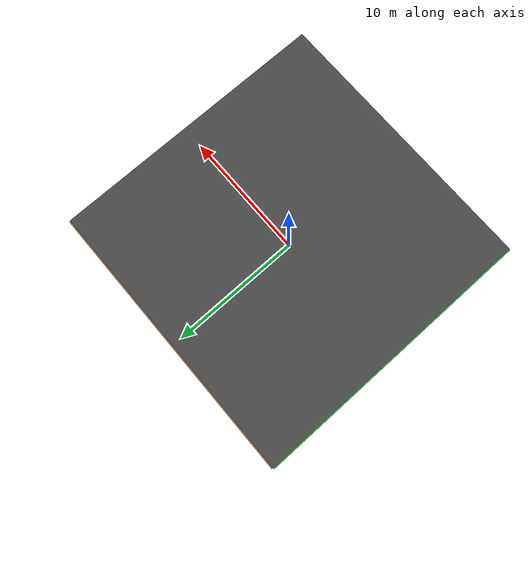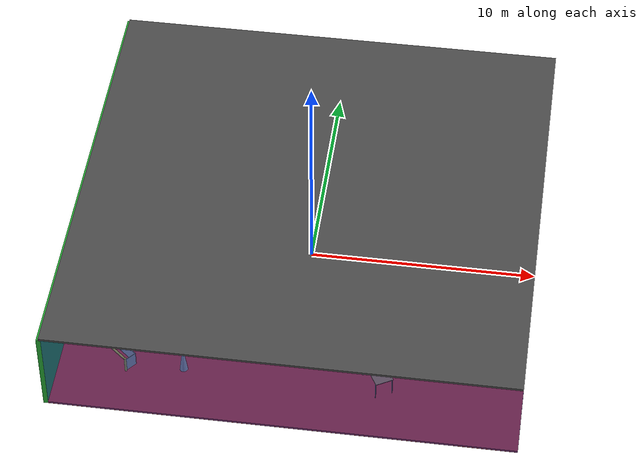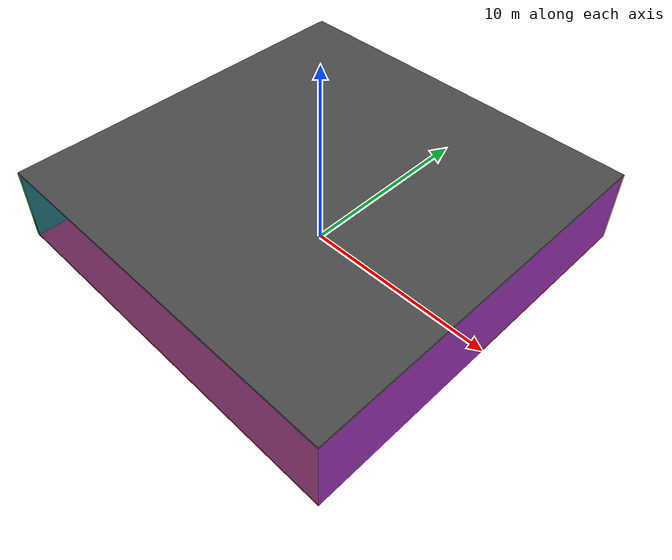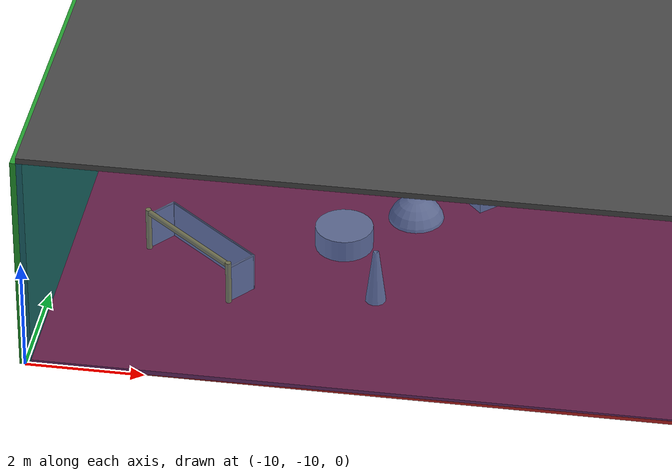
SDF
<sdf version="1.4">
 <world name="default">
  <physics type="ode">
   <max_step_size>0.001</max_step_size>
   <real_time_factor>1</real_time_factor>
   <real_time_update_rate>1000</real_time_update_rate>
   <gravity>0 0 -9.8</gravity>
  </physics>
  <scene><ambient>0.4 0.4 0.4 1</ambient><background>0.7 0.7 0.7 1</background><shadows>1</shadows></scene>
  <model name="Surrounding">
   <static>1</static>
   <link name="Ceiling">
    <collision name="Ceiling_Collision"><geometry><box><size>20 20 0.1</size></box></geometry></collision>
    <visual name="Ceiling_Visual">
     <geometry><box><size>20 20 0.1</size></box></geometry>
     <material>
      <script><uri>file://media/materials/scripts/gazebo.material</uri><name>Gazebo/Road</name></script>
     </material>
    </visual>
    <pose>0 0 4.05 0 0 0</pose>
   </link>
   <link name="Wall_South">
    <collision name="Wall_South_Collision">
     <geometry><box><size>20 0 4</size></box></geometry>
     <pose>0 0 2 0 -0 0</pose>
    </collision>
    <visual name="Wall_South_Visual">
     <pose>0 0 2 0 -0 0</pose>
     <geometry><box><size>20 0 4</size></box></geometry>
     <material>
      <script><uri>file://media/materials/scripts/gazebo.material</uri><name>Gazebo/BlueTransparent</name></script>
     </material>
    </visual>
    <velocity_decay><linear>0</linear><angular>0</angular></velocity_decay>
    <pose>0 -10 0 0 -0 0</pose>
   </link>
   <link name="Wall_East">
    <collision name="Wall_21_Collision">
     <geometry><box><size>20 0 4</size></box></geometry>
     <pose>0 0 2 0 -0 0</pose>
    </collision>
    <visual name="Wall_21_Visual">
     <pose>0 0 2 0 -0 0</pose>
     <geometry><box><size>20 0 4</size></box></geometry>
     <material>
      <script><uri>file://media/materials/scripts/gazebo.material</uri><name>Gazebo/Purple</name></script>
     </material>
    </visual>
    <velocity_decay><linear>0</linear><angular>0</angular></velocity_decay>
    <pose>10 0 0 0 -0 1.5708</pose>
   </link>
   <link name="Wall_North">
    <collision name="Wall_22_Collision">
     <geometry><box><size>20 0.2 4</size></box></geometry>
     <pose>0 0 2 0 -0 0</pose>
    </collision>
    <visual name="Wall_22_Visual">
     <pose>0 0 2 0 -0 0</pose>
     <geometry><box><size>20 0.2 4</size></box></geometry>
     <material>
      <script><uri>file://media/materials/scripts/gazebo.material</uri><name>Gazebo/WoodFloor</name></script>
     </material>
    </visual>
    <velocity_decay><linear>0</linear><angular>0</angular></velocity_decay>
    <pose>0 10 0 0 -0 0</pose>
   </link>
   <link name="Wall_West">
    <collision name="Wall_23_Collision">
     <geometry><box><size>20 0.2 4</size></box></geometry>
     <pose>0 0 2 0 -0 0</pose>
    </collision>
    <visual name="Wall_23_Visual">
     <pose>0 0 2 0 -0 0</pose>
     <geometry><box><size>20 0.2 4</size></box></geometry>
     <material>
      <script><uri>file://media/materials/scripts/gazebo.material</uri><name>Gazebo/Green</name></script>
     </material>
    </visual>
    <velocity_decay><linear>0</linear><angular>0</angular></velocity_decay>
    <pose>-10 0 0 0 0 -1.5708</pose>
   </link>
   <link name="Ground_link">
    <collision name="collision">
     <pose>0 0 .05 0 -0 0</pose>
     <geometry><box><size>20 20 0.1</size></box></geometry>
    </collision>
    <visual name="visual">
     <pose>0 0 .05 0 -0 0</pose>
     <geometry><box><size>20 20 0.1</size></box></geometry>
     <material>
      <script><uri>file://media/materials/scripts/gazebo.material</uri><name>Gazebo/RedBright</name></script>
     </material>
    </visual>
   </link>
   <static>1</static>
  </model>
  <spherical_coordinates>
   <surface_model>EARTH_WGS84</surface_model>
   <latitude_deg>0</latitude_deg>
   <longitude_deg>0</longitude_deg>
   <elevation>0</elevation>
   <heading_deg>0</heading_deg>
  </spherical_coordinates>
  <light name="lightball_0" type="diffuse">
   <diffuse>0.8 0.8 0.8 1</diffuse>
   <specular>0.2 0.2 0.2 1</specular>
   <attenuation>
    <range>100</range>
    <constant>0.7</constant>
    <linear>0.01</linear>
    <quadratic>0.001</quadratic>
   </attenuation>
   <direction>-0.5 0.1 -0.9</direction>
   <pose>-8.95540850863 7.91236832704 1.64403742394 0 0 0</pose>
  </light>
  <light name="lightball_1" type="diffuse">
   <diffuse>0.8 0.8 0.8 1</diffuse>
   <specular>0.2 0.2 0.2 1</specular>
   <attenuation>
    <range>100</range>
    <constant>0.7</constant>
    <linear>0.01</linear>
    <quadratic>0.001</quadratic>
   </attenuation>
   <direction>-0.5 0.1 -0.9</direction>
   <pose>-1.40991176411 8.70638496484 2.43607807621 0 0 0</pose>
  </light>
  <light name="lightball_2" type="diffuse">
   <diffuse>0.8 0.8 0.8 1</diffuse>
   <specular>0.2 0.2 0.2 1</specular>
   <attenuation>
    <range>100</range>
    <constant>0.7</constant>
    <linear>0.01</linear>
    <quadratic>0.001</quadratic>
   </attenuation>
   <direction>-0.5 0.1 -0.9</direction>
   <pose>-5.91555272385 -0.319068125501 2.07044409659 0 0 0</pose>
  </light>
  <light name="lightball_3" type="diffuse">
   <diffuse>0.8 0.8 0.8 1</diffuse>
   <specular>0.2 0.2 0.2 1</specular>
   <attenuation>
    <range>100</range>
    <constant>0.7</constant>
    <linear>0.01</linear>
    <quadratic>0.001</quadratic>
   </attenuation>
   <direction>-0.5 0.1 -0.9</direction>
   <pose>1.2483822978 -0.948651939948 1.71882209323 0 0 0</pose>
  </light>
  <light name="lightball_4" type="diffuse">
   <diffuse>0.8 0.8 0.8 1</diffuse>
   <specular>0.2 0.2 0.2 1</specular>
   <attenuation>
    <range>100</range>
    <constant>0.7</constant>
    <linear>0.01</linear>
    <quadratic>0.001</quadratic>
   </attenuation>
   <direction>-0.5 0.1 -0.9</direction>
   <pose>2.21749895561 -0.87548320969 1.40401995827 0 0 0</pose>
  </light>
  <light name="lightball_5" type="diffuse">
   <diffuse>0.8 0.8 0.8 1</diffuse>
   <specular>0.2 0.2 0.2 1</specular>
   <attenuation>
    <range>100</range>
    <constant>0.7</constant>
    <linear>0.01</linear>
    <quadratic>0.001</quadratic>
   </attenuation>
   <direction>-0.5 0.1 -0.9</direction>
   <pose>-9.07530286709 6.31543153284 3.80724982865 0 0 0</pose>
  </light>
  <light name="lightball_6" type="diffuse">
   <diffuse>0.8 0.8 0.8 1</diffuse>
   <specular>0.2 0.2 0.2 1</specular>
   <attenuation>
    <range>100</range>
    <constant>0.7</constant>
    <linear>0.01</linear>
    <quadratic>0.001</quadratic>
   </attenuation>
   <direction>-0.5 0.1 -0.9</direction>
   <pose>-4.8812960046 -0.508094537454 2.03719228346 0 0 0</pose>
  </light>
  <light name="lightball_7" type="diffuse">
   <diffuse>0.8 0.8 0.8 1</diffuse>
   <specular>0.2 0.2 0.2 1</specular>
   <attenuation>
    <range>100</range>
    <constant>0.7</constant>
    <linear>0.01</linear>
    <quadratic>0.001</quadratic>
   </attenuation>
   <direction>-0.5 0.1 -0.9</direction>
   <pose>-5.16511198602 -7.0608679534 2.30085409313 0 0 0</pose>
  </light>
  <light name="lightball_8" type="diffuse">
   <diffuse>0.8 0.8 0.8 1</diffuse>
   <specular>0.2 0.2 0.2 1</specular>
   <attenuation>
    <range>100</range>
    <constant>0.7</constant>
    <linear>0.01</linear>
    <quadratic>0.001</quadratic>
   </attenuation>
   <direction>-0.5 0.1 -0.9</direction>
   <pose>0.63162064777 9.76494144558 1.26593931487 0 0 0</pose>
  </light>
  <light name="lightball_9" type="diffuse">
   <diffuse>0.8 0.8 0.8 1</diffuse>
   <specular>0.2 0.2 0.2 1</specular>
   <attenuation>
    <range>100</range>
    <constant>0.7</constant>
    <linear>0.01</linear>
    <quadratic>0.001</quadratic>
   </attenuation>
   <direction>-0.5 0.1 -0.9</direction>
   <pose>5.49489793767 -0.0672725540324 2.65765024654 0 0 0</pose>
  </light>
  <light name="lightball_10" type="diffuse">
   <diffuse>0.8 0.8 0.8 1</diffuse>
   <specular>0.2 0.2 0.2 1</specular>
   <attenuation>
    <range>100</range>
    <constant>0.7</constant>
    <linear>0.01</linear>
    <quadratic>0.001</quadratic>
   </attenuation>
   <direction>-0.5 0.1 -0.9</direction>
   <pose>-5.50494262662 9.58783845039 2.26400416523 0 0 0</pose>
  </light>
  <light name="lightball_11" type="diffuse">
   <diffuse>0.8 0.8 0.8 1</diffuse>
   <specular>0.2 0.2 0.2 1</specular>
   <attenuation>
    <range>100</range>
    <constant>0.7</constant>
    <linear>0.01</linear>
    <quadratic>0.001</quadratic>
   </attenuation>
   <direction>-0.5 0.1 -0.9</direction>
   <pose>8.27753775304 -2.25107246741 1.28363595888 0 0 0</pose>
  </light>
  <include>
   <uri>model://robocup_3Dsim_goal</uri>
   <pose>-7.7635663982 -7.2070568683 0 0 0 0.878414986956</pose>
  </include>
  <include><uri>model://table</uri><pose>-6.75938318677 2.15439590936 0 0 0 2.63649746408</pose></include>
  <include>
   <uri>model://construction_cone</uri>
   <pose>-4.51574790739 -7.4479229233 0 0 0 2.9867753103</pose>
  </include>
  <include>
   <uri>model://textured_shapes</uri>
   <pose>-4.17047989741 -4.93164774969 0 0 0 2.30995294011</pose>
  </include>
  <include><uri>model://cabinet</uri><pose>-4.81034907732 -1.32799585808 0 0 0 0.155772519254</pose></include>
  <include><uri>model://table</uri><pose>-1.58099717348 4.3520090597 0 0 0 0.507638025738</pose></include>
  <include><uri>model://table</uri><pose>3.79942760221 -7.15794720675 0 0 0 2.08143768259</pose></include>
 </world>
</sdf>

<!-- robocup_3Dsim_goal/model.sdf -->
<sdf version="1.5">
  <model name="robocup_3d_goal">
    <static>true</static>
    <link name="left_post">
      <pose>0 1.05 0.45 0 0 0</pose>
      <collision name="collision">
        <geometry>
          <cylinder>
            <radius>0.05</radius>
            <length>0.9</length>
          </cylinder>
        </geometry>
      </collision>
      <visual name="visual">
        <geometry>
          <cylinder>
            <radius>0.05</radius>
            <length>0.9</length>
          </cylinder>
        </geometry>
        <material>
          <script>
            <uri>file://media/materials/scripts/gazebo.material</uri>
            <name>Gazebo/ZincYellow</name>
          </script>
        </material>
      </visual>
    </link>
    <link name="left_support_horiz_lower">
      <pose>0.30 1.05 0.01 0 0 0</pose>
      <collision name="collision">
        <geometry>
          <box>
            <size>0.50 0.02 0.02</size>
          </box>
        </geometry>
      </collision>
      <visual name="visual">
        <geometry>
          <box>
            <size>0.50 0.02 0.02</size>
          </box>
        </geometry>
        <material>
          <script>
            <uri>file://media/materials/scripts/gazebo.material</uri>
            <name>Gazebo/White</name>
          </script>
        </material>
      </visual>
    </link>
    <link name="left_support_horiz_upper">
      <pose>0.30 1.05 0.79 0 0 0</pose>
      <collision name="collision">
        <geometry>
          <box>
            <size>0.50 0.02 0.02</size>
          </box>
        </geometry>
      </collision>
      <visual name="visual">
        <geometry>
          <box>
            <size>0.50 0.02 0.02</size>
          </box>
        </geometry>
        <material>
          <script>
            <uri>file://media/materials/scripts/gazebo.material</uri>
            <name>Gazebo/White</name>
          </script>
        </material>
      </visual>
    </link>
    <link name="left_support_vertical">
      <pose>0.56 1.05 0.4 0 1.5708 0</pose>
      <collision name="collision">
        <geometry>
          <box>
            <size>0.80 0.02 0.02</size>
          </box>
        </geometry>
      </collision>
      <visual name="visual">
        <geometry>
          <box>
            <size>0.80 0.02 0.02</size>
          </box>
        </geometry>
        <material>
          <script>
            <uri>file://media/materials/scripts/gazebo.material</uri>
            <name>Gazebo/White</name>
          </script>
        </material>
      </visual>
    </link>
    <link name="right_support_horiz_lower">
      <pose>0.30 -1.05 0.01 0 0 0</pose>
      <collision name="collision">
        <geometry>
          <box>
            <size>0.50 0.02 0.02</size>
          </box>
        </geometry>
      </collision>
      <visual name="visual">
        <geometry>
          <box>
            <size>0.50 0.02 0.02</size>
          </box>
        </geometry>
        <material>
          <script>
            <uri>file://media/materials/scripts/gazebo.material</uri>
            <name>Gazebo/White</name>
          </script>
        </material>
      </visual>
    </link>
    <link name="right_support_horiz_upper">
      <pose>0.30 -1.05 0.79 0 0 0</pose>
      <collision name="collision">
        <geometry>
          <box>
            <size>0.50 0.02 0.02</size>
          </box>
        </geometry>
      </collision>
      <visual name="visual">
        <geometry>
          <box>
            <size>0.50 0.02 0.02</size>
          </box>
        </geometry>
        <material>
          <script>
            <uri>file://media/materials/scripts/gazebo.material</uri>
            <name>Gazebo/White</name>
          </script>
        </material>
      </visual>
    </link>
    <link name="right_support_vertical">
      <pose>0.56 -1.05 0.4 0 1.5708 0</pose>
      <collision name="collision">
        <geometry>
          <box>
            <size>0.80 0.02 0.02</size>
          </box>
        </geometry>
      </collision>
      <visual name="visual">
        <geometry>
          <box>
            <size>0.80 0.02 0.02</size>
          </box>
        </geometry>
        <material>
          <script>
            <uri>file://media/materials/scripts/gazebo.material</uri>
            <name>Gazebo/White</name>
          </script>
        </material>
      </visual>
    </link>
    <link name="center_support_horiz_lower">
      <pose>0.56 0 0.01 0 1.5708 0</pose>
      <collision name="collision">
        <geometry>
          <box>
            <size>0.02 2.08 0.02</size>
          </box>
        </geometry>
      </collision>
      <visual name="visual">
        <geometry>
          <box>
            <size>0.02 2.08 0.02</size>
          </box>
        </geometry>
        <material>
          <script>
            <uri>file://media/materials/scripts/gazebo.material</uri>
            <name>Gazebo/White</name>
          </script>
        </material>
      </visual>
    </link>
    <link name="center_support_horiz_upper">
      <pose>0.56 0 0.79 0 1.5708 0</pose>
      <collision name="collision">
        <geometry>
          <box>
            <size>0.02 2.08 0.02</size>
          </box>
        </geometry>
      </collision>
      <visual name="visual">
        <geometry>
          <box>
            <size>0.02 2.08 0.02</size>
          </box>
        </geometry>
        <material>
          <script>
            <uri>file://media/materials/scripts/gazebo.material</uri>
            <name>Gazebo/White</name>
          </script>
        </material>
      </visual>
    </link>
    <link name="right_post">
      <pose>0 -1.05 0.45 0 0 0</pose>
      <collision name="collision">
        <geometry>
          <cylinder>
            <radius>0.05</radius>
            <length>0.9</length>
          </cylinder>
        </geometry>
      </collision>
      <visual name="visual">
        <geometry>
          <cylinder>
            <radius>0.05</radius>
            <length>0.9</length>
          </cylinder>
        </geometry>
        <material>
          <script>
            <uri>file://media/materials/scripts/gazebo.material</uri>
            <name>Gazebo/ZincYellow</name>
          </script>
        </material>
      </visual>
    </link>
    <link name="crossbar">
      <pose>0 0 0.85 1.57 1.57 0</pose>
      <collision name="collision">
        <geometry>
          <cylinder>
            <radius>0.05</radius>
            <length>2.0</length>
          </cylinder>
        </geometry>
      </collision>
      <visual name="visual">
        <geometry>
          <cylinder>
            <radius>0.05</radius>
            <length>2.0</length>
          </cylinder>
        </geometry>
        <material>
          <script>
            <uri>file://media/materials/scripts/gazebo.material</uri>
            <name>Gazebo/ZincYellow</name>
          </script>
        </material>
      </visual>
    </link>
    <link name="center_net">
      <pose>0.56 0 0.40 0 0 0</pose>
      <collision name="collision">
        <geometry>
          <box>
            <size>0.01 2.1 0.80</size>
          </box>
        </geometry>
      </collision>
      <visual name="visual">
        <geometry>
          <box>
            <size>0.01 2.1 0.80</size>
          </box>
        </geometry>
        <material>
          <script>
            <uri>model://../model_source/models/robocup09_spl_field/materials/scripts/</uri>
            <uri>model://../model_source/models/robocup09_spl_field/materials/textures/</uri>
            <name>RoboCup/Net</name>
          </script>
        </material>
      </visual>
    </link>
    <link name="left_net">
      <pose>0.30 1.05 0.40 0 0 0</pose>
      <collision name="collision">
        <geometry>
          <box>
            <size>0.50 0.01 0.76</size>
          </box>
        </geometry>
      </collision>
      <visual name="visual">
        <geometry>
          <box>
            <size>0.50 0.01 0.76</size>
          </box>
        </geometry>
        <material>
          <script>
            <uri>model://../model_source/models/robocup09_spl_field/materials/scripts/</uri>
            <uri>model://../model_source/models/robocup09_spl_field/materials/textures/</uri>
            <name>RoboCup/Net</name>
          </script>
        </material>
      </visual>
    </link>
    <link name="right_net">
      <pose>0.30 -1.05 0.40 0 0 0</pose>
      <collision name="collision">
        <geometry>
          <box>
            <size>0.50 0.01 0.76</size>
          </box>
        </geometry>
      </collision>
      <visual name="visual">
        <geometry>
          <box>
            <size>0.50 0.01 0.76</size>
          </box>
        </geometry>
        <material>
          <script>
            <uri>model://../model_source/models/robocup09_spl_field/materials/scripts/</uri>
            <uri>model://../model_source/models/robocup09_spl_field/materials/textures/</uri>
            <name>RoboCup/Net</name>
          </script>
        </material>
      </visual>
    </link>
  </model>
</sdf>

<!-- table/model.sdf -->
<sdf version="1.5">
  <model name="table">
    <static>true</static>
    <link name="link">
      <collision name="surface">
        <pose>0 0 1.0 0 0 0</pose>
        <geometry>
          <box>
            <size>1.5 0.8 0.03</size>
          </box>
        </geometry>
        <surface>
          <friction>
            <ode>
              <mu>0.6</mu>
              <mu2>0.6</mu2>
            </ode>
          </friction>
        </surface>
      </collision>
      <visual name="visual1">
        <pose>0 0 1.0 0 0 0</pose>
        <geometry>
          <box>
            <size>1.5 0.8 0.03</size>
          </box>
        </geometry>
        <material>
          <script>
            <uri>model://media/materials/scripts/gazebo.material</uri>
            <name>Gazebo/Wood</name>
          </script>
        </material>
      </visual>
      <collision name="front_left_leg">
        <pose>0.68 0.38 0.5 0 0 0</pose>
        <geometry>
          <cylinder>
            <radius>0.02</radius>
            <length>1.0</length>
          </cylinder>
        </geometry>
      </collision>
      <visual name="front_left_leg">
        <pose>0.68 0.38 0.5 0 0 0</pose>
        <geometry>
          <cylinder>
            <radius>0.02</radius>
            <length>1.0</length>
          </cylinder>
        </geometry>
        <material>
          <script>
            <uri>model://media/materials/scripts/gazebo.material</uri>
            <name>Gazebo/Grey</name>
          </script>
        </material>
      </visual>
      <collision name="front_right_leg">
        <pose>0.68 -0.38 0.5 0 0 0</pose>
        <geometry>
          <cylinder>
            <radius>0.02</radius>
            <length>1.0</length>
          </cylinder>
        </geometry>
      </collision>
      <visual name="front_right_leg">
        <pose>0.68 -0.38 0.5 0 0 0</pose>
        <geometry>
          <cylinder>
            <radius>0.02</radius>
            <length>1.0</length>
          </cylinder>
        </geometry>
        <material>
          <script>
            <uri>model://media/materials/scripts/gazebo.material</uri>
            <name>Gazebo/Grey</name>
          </script>
        </material>
      </visual>
      <collision name="back_right_leg">
        <pose>-0.68 -0.38 0.5 0 0 0</pose>
        <geometry>
          <cylinder>
            <radius>0.02</radius>
            <length>1.0</length>
          </cylinder>
        </geometry>
      </collision>
      <visual name="back_right_leg">
        <pose>-0.68 -0.38 0.5 0 0 0</pose>
        <geometry>
          <cylinder>
            <radius>0.02</radius>
            <length>1.0</length>
          </cylinder>
        </geometry>
        <material>
          <script>
            <uri>model://media/materials/scripts/gazebo.material</uri>
            <name>Gazebo/Grey</name>
          </script>
        </material>
      </visual>
      <collision name="back_left_leg">
        <pose>-0.68 0.38 0.5 0 0 0</pose>
        <geometry>
          <cylinder>
            <radius>0.02</radius>
            <length>1.0</length>
          </cylinder>
        </geometry>
      </collision>
      <visual name="back_left_leg">
        <pose>-0.68 0.38 0.5 0 0 0</pose>
        <geometry>
          <cylinder>
            <radius>0.02</radius>
            <length>1.0</length>
          </cylinder>
        </geometry>
        <material>
          <script>
            <uri>model://media/materials/scripts/gazebo.material</uri>
            <name>Gazebo/Grey</name>
          </script>
        </material>
      </visual>
    </link>
  </model>
</sdf>

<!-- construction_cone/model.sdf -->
<sdf version="1.5">
  <model name="Construction Cone">
    <link name="link">
      <collision name="collision">
        <geometry>
          <mesh>
            <scale>10 10 10</scale>
            <uri>file://isr-testbed/construction_cone/meshes/construction_cone.dae</uri>
          </mesh>
        </geometry>
      </collision>
      <visual name="visual">
        <geometry>
          <mesh>
            <scale>10 10 10</scale>
            <uri>file://isr-testbed/construction_cone/meshes/construction_cone.dae</uri>
          </mesh>
        </geometry>
      </visual>
    </link>
  </model>
</sdf>

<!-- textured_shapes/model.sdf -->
<sdf version="1.6">
  <model name="textured_shapes">
    <pose>0 0 0.5 0 0 0</pose>
    <link name="box">
      <pose>0 -1.5 0 0 0 0</pose>
      <collision name="collision">
        <geometry>
          <box>
            <size>1 1 1</size>
          </box>
        </geometry>
      </collision>
      <visual name="visual">
        <geometry>
          <box>
            <size>1 1 1</size>
          </box>
        </geometry>
        <material>
          <script>
            <uri>model://../model_source/models/textured_shapes/materials/scripts</uri>
            <uri>model://../model_source/models/textured_shapes/materials/textures</uri>
            <name>TexturedShape/Squares</name>
          </script>
        </material>
      </visual>
    </link>
    <link name="sphere">
      <collision name="collision">
        <geometry>
          <sphere>
            <radius>0.5</radius>
          </sphere>
        </geometry>
      </collision>
      <visual name="visual">
        <geometry>
          <sphere>
            <radius>0.5</radius>
          </sphere>
        </geometry>
        <material>
          <script>
            <uri>model://../model_source/models/textured_shapes/materials/scripts</uri>
            <uri>model://../model_source/models/textured_shapes/materials/textures</uri>
            <name>TexturedShape/Squares</name>
          </script>
        </material>
      </visual>
    </link>
    <link name="cylinder">
      <pose>0 1.5 0 0 0 0</pose>
      <collision name="collision">
        <geometry>
          <cylinder>
            <radius>0.5</radius>
            <length>1</length>
          </cylinder>
        </geometry>
      </collision>
      <visual name="visual">
        <geometry>
          <cylinder>
            <radius>0.5</radius>
            <length>1</length>
          </cylinder>
        </geometry>
        <material>
          <script>
            <uri>model://../model_source/models/textured_shapes/materials/scripts</uri>
            <uri>model://../model_source/models/textured_shapes/materials/textures</uri>
            <name>TexturedShape/Squares</name>
          </script>
        </material>
      </visual>
    </link>
  </model>
</sdf>

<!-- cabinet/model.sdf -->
<sdf version="1.5">
  <model name="cabinet">
    <static>true</static>
    <link name="cabinet_bottom_plate">
      <inertial>
        <pose>0 0 -1 0 0 0</pose>
        <inertia>
          <ixx>2.050000</ixx>
          <ixy>0</ixy>
          <ixz>0</ixz>
          <iyy>2.050000</iyy>
          <iyz>0</iyz>
          <izz>2.050000</izz>
        </inertia>
        <mass>25.000000</mass>
      </inertial>
      <collision name="cabinet_bottom_plate_geom">
        <pose>0 0 0.010000 0 0 0</pose>
        <geometry>
          <box>
            <size>0.450000 0.450000 0.020000</size>
          </box>
        </geometry>
      </collision>
      <visual name="cabinet_bottom_plate_geom_visual">
        <pose>0 0 0.010000 0 0 0</pose>
        <geometry>
          <box>
            <size>0.450000 0.450000 0.020000</size>
          </box>
        </geometry>
        <material>
          <script>
            <uri>model://media/materials/scripts/gazebo.material</uri>
            <name>Gazebo/Wood</name>
          </script>
        </material>
      </visual>
      <collision name="cabinet_bottom_plate_geom_cabinet_back_plate">
        <pose>0.235000 0 0.510000 0 0 0</pose>
        <geometry>
          <box>
            <size>0.020000 0.450000 1.020000</size>
          </box>
        </geometry>
      </collision>
      <visual name="cabinet_bottom_plate_geom_cabinet_back_plate_visual">
        <pose>0.235000 0 0.510000 0 0 0</pose>
        <geometry>
          <box>
            <size>0.020000 0.450000 1.020000</size>
          </box>
        </geometry>
        <material>
          <script>
            <uri>model://media/materials/scripts/gazebo.material</uri>
            <name>Gazebo/Wood</name>
          </script>
        </material>
      </visual>
      <collision name="cabinet_bottom_plate_geom_cabinet_left_plate">
        <pose>0 0.235000 0.510000 0 0 0</pose>
        <geometry>
          <box>
            <size>0.450000 0.020000 1.020000</size>
          </box>
        </geometry>
      </collision>
      <visual name="cabinet_bottom_plate_geom_cabinet_left_plate_visual">
        <pose>0 0.235000 0.510000 0 0 0</pose>
        <geometry>
          <box>
            <size>0.450000 0.020000 1.020000</size>
          </box>
        </geometry>
        <material>
          <script>
            <uri>model://media/materials/scripts/gazebo.material</uri>
            <name>Gazebo/Wood</name>
          </script>
        </material>
      </visual>
      <collision name="cabinet_bottom_plate_geom_cabinet_middle_plate">
        <pose>0 0 0.510000 0 0 0</pose>
        <geometry>
          <box>
            <size>0.450000 0.450000 0.020000</size>
          </box>
        </geometry>
      </collision>
      <visual name="cabinet_bottom_plate_geom_cabinet_middle_plate_visual">
        <pose>0 0 0.510000 0 0 0</pose>
        <geometry>
          <box>
            <size>0.450000 0.450000 0.020000</size>
          </box>
        </geometry>
        <material>
          <script>
            <uri>model://media/materials/scripts/gazebo.material</uri>
            <name>Gazebo/Wood</name>
          </script>
        </material>
      </visual>
      <collision name="cabinet_bottom_plate_geom_cabinet_right_plate">
        <pose>0 -0.235000 0.510000 0 0 0</pose>
        <geometry>
          <box>
            <size>0.450000 0.020000 1.020000</size>
          </box>
        </geometry>
      </collision>
      <visual name="cabinet_bottom_plate_geom_cabinet_right_plate_visual">
        <pose>0 -0.235000 0.510000 0 0 0</pose>
        <geometry>
          <box>
            <size>0.450000 0.020000 1.020000</size>
          </box>
        </geometry>
        <material>
          <script>
            <uri>model://media/materials/scripts/gazebo.material</uri>
            <name>Gazebo/Wood</name>
          </script>
        </material>
      </visual>
      <collision name="cabinet_bottom_plate_geom_cabinet_top_plate">
        <pose>0 0 1.010000 0 0 0</pose>
        <geometry>
          <box>
            <size>0.450000 0.450000 0.020000</size>
          </box>
        </geometry>
      </collision>
      <visual name="cabinet_bottom_plate_geom_cabinet_top_plate_visual">
        <pose>0 0 1.010000 0 0 0</pose>
        <geometry>
          <box>
            <size>0.450000 0.450000 0.020000</size>
          </box>
        </geometry>
        <material>
          <script>
            <uri>model://media/materials/scripts/gazebo.material</uri>
            <name>Gazebo/Wood</name>
          </script>
        </material>
      </visual>
    </link>
  </model>
</sdf>
